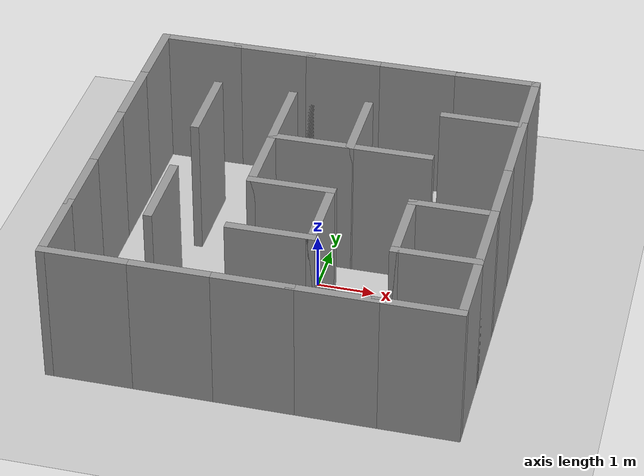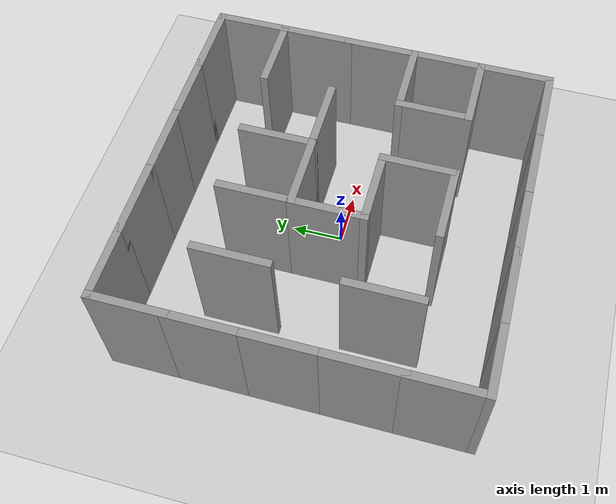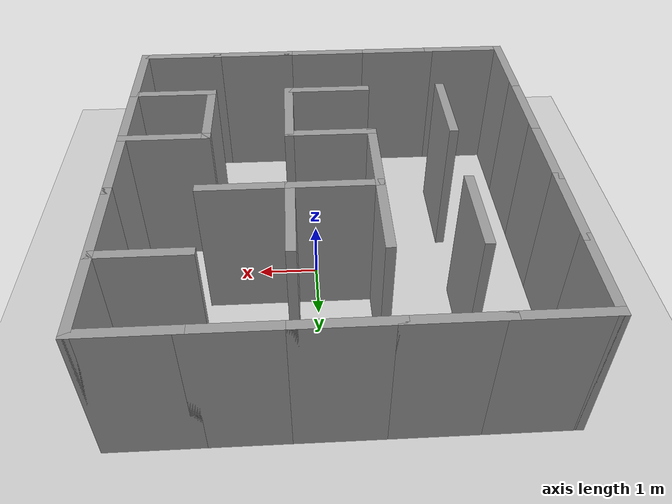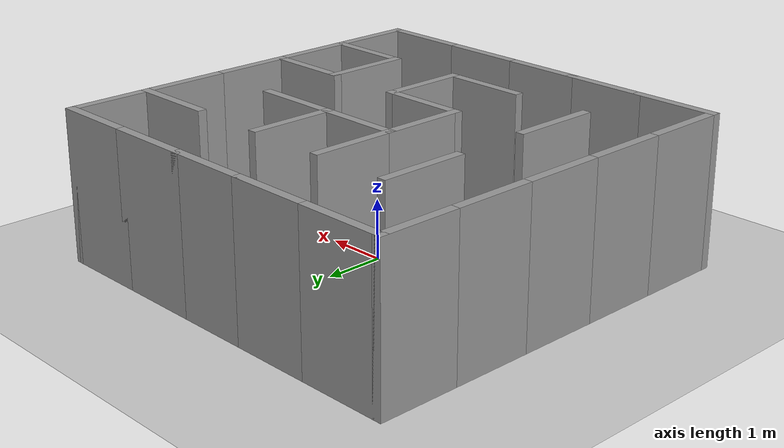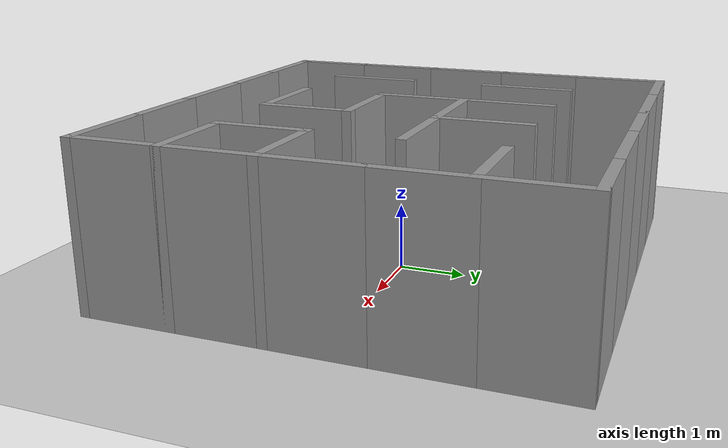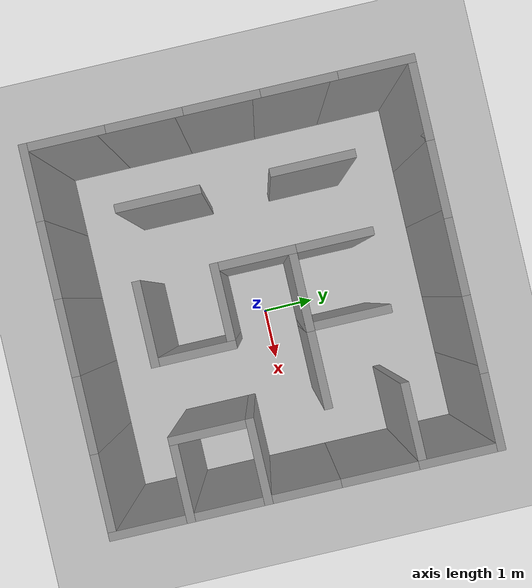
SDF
<sdf version="1.7">
 <world name="default">
  <model name="ground_plane">
   <static>1</static>
   <link name="link">
    <collision name="collision">
     <geometry><plane><normal>0 0 1</normal><size>100 100</size></plane></geometry>
     <surface><friction><ode><mu>100</mu><mu2>50</mu2></ode></friction></surface>
    </collision>
    <visual name="visual">
     <cast_shadows>0</cast_shadows>
     <geometry><plane><normal>0 0 1</normal><size>100 100</size></plane></geometry>
     <material>
      <script><uri>file://media/materials/scripts/gazebo.material</uri><name>Gazebo/Grey</name></script>
     </material>
    </visual>
   </link>
  </model>
  <light name="sun" type="directional">
   <pose>0 0 10 0 -0 0</pose>
   <diffuse>0.8 0.8 0.8 1</diffuse>
   <specular>0.2 0.2 0.2 1</specular>
   <attenuation>
    <range>1000</range>
    <constant>0.9</constant>
    <linear>0.01</linear>
    <quadratic>0.001</quadratic>
   </attenuation>
   <direction>-0.5 0.1 -0.9</direction>
   <spot><inner_angle>0</inner_angle><outer_angle>0</outer_angle><falloff>0</falloff></spot>
  </light>
  <scene><shadows>0</shadows><ambient>0.4 0.4 0.4 1</ambient><background>0.7 0.7 0.7 1</background></scene>
  <physics type="ode">
   <real_time_update_rate>1000</real_time_update_rate>
   <max_step_size>0.001</max_step_size>
   <real_time_factor>1</real_time_factor>
   <ode>
    <solver>
     <type>quick</type>
     <iters>150</iters>
     <precon_iters>0</precon_iters>
     <sor>1.4</sor>
     <use_dynamic_moi_rescaling>1</use_dynamic_moi_rescaling>
    </solver>
    <constraints>
     <cfm>1e-05</cfm>
     <erp>0.2</erp>
     <contact_max_correcting_vel>2000</contact_max_correcting_vel>
     <contact_surface_layer>0.01</contact_surface_layer>
    </constraints>
   </ode>
  </physics>
  <gravity>0 0 -9.8</gravity>
  <magnetic_field>6e-06 2.3e-05 -4.2e-05</magnetic_field>
  <atmosphere type="adiabatic"/>
  <audio><device>default</device></audio>
  <spherical_coordinates>
   <surface_model>EARTH_WGS84</surface_model>
   <latitude_deg>0</latitude_deg>
   <longitude_deg>0</longitude_deg>
   <elevation>0</elevation>
   <heading_deg>0</heading_deg>
  </spherical_coordinates>
  <model name="test_maze_v3">
   <pose>-0.289993 -0.005267 0 0 -0 0</pose>
   <link name="Wall_0">
    <collision name="Wall_0_Collision">
     <geometry><box><size>1.5 0.15 2.5</size></box></geometry>
     <pose>0 0 1.25 0 -0 0</pose>
    </collision>
    <visual name="Wall_0_Visual">
     <pose>0 0 1.25 0 -0 0</pose>
     <geometry><box><size>1.5 0.15 2.5</size></box></geometry>
     <material>
      <script><uri>file://media/materials/scripts/gazebo.material</uri><name>Gazebo/Grey</name></script>
      <ambient>1 1 1 1</ambient>
     </material>
     <meta><layer>0</layer></meta>
    </visual>
    <pose>-0 -2.025 0 0 -0 0</pose>
   </link>
   <link name="Wall_1">
    <collision name="Wall_1_Collision">
     <geometry><box><size>1.5 0.15 2.5</size></box></geometry>
     <pose>0 0 1.25 0 -0 0</pose>
    </collision>
    <visual name="Wall_1_Visual">
     <pose>0 0 1.25 0 -0 0</pose>
     <geometry><box><size>1.5 0.15 2.5</size></box></geometry>
     <material>
      <script><uri>file://media/materials/scripts/gazebo.material</uri><name>Gazebo/Grey</name></script>
      <ambient>1 1 1 1</ambient>
     </material>
     <meta><layer>0</layer></meta>
    </visual>
    <pose>0.675 -1.35 0 0 -0 1.5708</pose>
   </link>
   <link name="Wall_12">
    <collision name="Wall_12_Collision">
     <geometry><box><size>1.5 0.15 2.5</size></box></geometry>
     <pose>0 0 1.25 0 -0 0</pose>
    </collision>
    <visual name="Wall_12_Visual">
     <pose>0 0 1.25 0 -0 0</pose>
     <geometry><box><size>1.5 0.15 2.5</size></box></geometry>
     <material>
      <script><uri>file://media/materials/scripts/gazebo.material</uri><name>Gazebo/Grey</name></script>
      <ambient>1 1 1 1</ambient>
     </material>
     <meta><layer>0</layer></meta>
    </visual>
    <pose>2.7 -0.675 0 0 -0 3.14159</pose>
   </link>
   <link name="Wall_13">
    <collision name="Wall_13_Collision">
     <geometry><box><size>1.5 0.15 2.5</size></box></geometry>
     <pose>0 0 1.25 0 -0 0</pose>
    </collision>
    <visual name="Wall_13_Visual">
     <pose>0 0 1.25 0 -0 0</pose>
     <geometry><box><size>1.5 0.15 2.5</size></box></geometry>
     <material>
      <script><uri>file://media/materials/scripts/gazebo.material</uri><name>Gazebo/Grey</name></script>
      <ambient>1 1 1 1</ambient>
     </material>
     <meta><layer>0</layer></meta>
    </visual>
    <pose>2.025 -1.35 0 0 -0 -1.5708</pose>
   </link>
   <link name="Wall_14">
    <collision name="Wall_14_Collision">
     <geometry><box><size>1.5 0.15 2.5</size></box></geometry>
     <pose>0 0 1.25 0 -0 0</pose>
    </collision>
    <visual name="Wall_14_Visual">
     <pose>0 0 1.25 0 -0 0</pose>
     <geometry><box><size>1.5 0.15 2.5</size></box></geometry>
     <material>
      <script><uri>file://media/materials/scripts/gazebo.material</uri><name>Gazebo/Grey</name></script>
      <ambient>1 1 1 1</ambient>
     </material>
     <meta><layer>0</layer></meta>
    </visual>
    <pose>2.7 -2.025 0 0 -0 0</pose>
   </link>
   <link name="Wall_15">
    <collision name="Wall_15_Collision">
     <geometry><box><size>1.5 0.15 2.5</size></box></geometry>
     <pose>0 0 1.25 0 -0 0</pose>
    </collision>
    <visual name="Wall_15_Visual">
     <pose>0 0 1.25 0 -0 0</pose>
     <geometry><box><size>1.5 0.15 2.5</size></box></geometry>
     <material>
      <script><uri>file://media/materials/scripts/gazebo.material</uri><name>Gazebo/Grey</name></script>
      <ambient>1 1 1 1</ambient>
     </material>
     <meta><layer>0</layer></meta>
    </visual>
    <pose>3.375 -1.35 0 0 -0 1.5708</pose>
   </link>
   <link name="Wall_17">
    <collision name="Wall_17_Collision">
     <geometry><box><size>1.5 0.15 2.5</size></box></geometry>
     <pose>0 0 1.25 0 -0 0</pose>
    </collision>
    <visual name="Wall_17_Visual">
     <pose>0 0 1.25 0 -0 0</pose>
     <geometry><box><size>1.5 0.15 2.5</size></box></geometry>
     <material>
      <script><uri>file://media/materials/scripts/gazebo.material</uri><name>Gazebo/Grey</name></script>
      <ambient>1 1 1 1</ambient>
     </material>
     <meta><layer>0</layer></meta>
    </visual>
    <pose>3.375 -2.7 0 0 -0 -1.5708</pose>
   </link>
   <link name="Wall_18">
    <collision name="Wall_18_Collision">
     <geometry><box><size>1.5 0.15 2.5</size></box></geometry>
     <pose>0 0 1.25 0 -0 0</pose>
    </collision>
    <visual name="Wall_18_Visual">
     <pose>0 0 1.25 0 -0 0</pose>
     <geometry><box><size>1.5 0.15 2.5</size></box></geometry>
     <material>
      <script><uri>file://media/materials/scripts/gazebo.material</uri><name>Gazebo/Grey</name></script>
      <ambient>1 1 1 1</ambient>
     </material>
     <meta><layer>0</layer></meta>
    </visual>
    <pose>2.7 -3.375 0 0 -0 3.14159</pose>
   </link>
   <link name="Wall_19">
    <collision name="Wall_19_Collision">
     <geometry><box><size>1.5 0.15 2.5</size></box></geometry>
     <pose>0 0 1.25 0 -0 0</pose>
    </collision>
    <visual name="Wall_19_Visual">
     <pose>0 0 1.25 0 -0 0</pose>
     <geometry><box><size>1.5 0.15 2.5</size></box></geometry>
     <material>
      <script><uri>file://media/materials/scripts/gazebo.material</uri><name>Gazebo/Grey</name></script>
      <ambient>1 1 1 1</ambient>
     </material>
     <meta><layer>0</layer></meta>
    </visual>
    <pose>1.35 -3.375 0 0 -0 3.14159</pose>
   </link>
   <link name="Wall_2">
    <collision name="Wall_2_Collision">
     <geometry><box><size>1.5 0.15 2.5</size></box></geometry>
     <pose>0 0 1.25 0 -0 0</pose>
    </collision>
    <visual name="Wall_2_Visual">
     <pose>0 0 1.25 0 -0 0</pose>
     <geometry><box><size>1.5 0.15 2.5</size></box></geometry>
     <material>
      <script><uri>file://media/materials/scripts/gazebo.material</uri><name>Gazebo/Grey</name></script>
      <ambient>1 1 1 1</ambient>
     </material>
     <meta><layer>0</layer></meta>
    </visual>
    <pose>-0 -0.675 0 0 -0 3.14159</pose>
   </link>
   <link name="Wall_20">
    <collision name="Wall_20_Collision">
     <geometry><box><size>1.5 0.15 2.5</size></box></geometry>
     <pose>0 0 1.25 0 -0 0</pose>
    </collision>
    <visual name="Wall_20_Visual">
     <pose>0 0 1.25 0 -0 0</pose>
     <geometry><box><size>1.5 0.15 2.5</size></box></geometry>
     <material>
      <script><uri>file://media/materials/scripts/gazebo.material</uri><name>Gazebo/Grey</name></script>
      <ambient>1 1 1 1</ambient>
     </material>
     <meta><layer>0</layer></meta>
    </visual>
    <pose>-0 -3.375 0 0 -0 3.14159</pose>
   </link>
   <link name="Wall_21">
    <collision name="Wall_21_Collision">
     <geometry><box><size>1.5 0.15 2.5</size></box></geometry>
     <pose>0 0 1.25 0 -0 0</pose>
    </collision>
    <visual name="Wall_21_Visual">
     <pose>0 0 1.25 0 -0 0</pose>
     <geometry><box><size>1.5 0.15 2.5</size></box></geometry>
     <material>
      <script><uri>file://media/materials/scripts/gazebo.material</uri><name>Gazebo/Grey</name></script>
      <ambient>1 1 1 1</ambient>
     </material>
     <meta><layer>0</layer></meta>
    </visual>
    <pose>-1.35 -3.375 0 0 -0 3.14159</pose>
   </link>
   <link name="Wall_22">
    <collision name="Wall_22_Collision">
     <geometry><box><size>1.5 0.15 2.5</size></box></geometry>
     <pose>0 0 1.25 0 -0 0</pose>
    </collision>
    <visual name="Wall_22_Visual">
     <pose>0 0 1.25 0 -0 0</pose>
     <geometry><box><size>1.5 0.15 2.5</size></box></geometry>
     <material>
      <script><uri>file://media/materials/scripts/gazebo.material</uri><name>Gazebo/Grey</name></script>
      <ambient>1 1 1 1</ambient>
     </material>
     <meta><layer>0</layer></meta>
    </visual>
    <pose>-2.7 -3.375 0 0 -0 3.14159</pose>
   </link>
   <link name="Wall_23">
    <collision name="Wall_23_Collision">
     <geometry><box><size>1.5 0.15 2.5</size></box></geometry>
     <pose>0 0 1.25 0 -0 0</pose>
    </collision>
    <visual name="Wall_23_Visual">
     <pose>0 0 1.25 0 -0 0</pose>
     <geometry><box><size>1.5 0.15 2.5</size></box></geometry>
     <material>
      <script><uri>file://media/materials/scripts/gazebo.material</uri><name>Gazebo/Grey</name></script>
      <ambient>1 1 1 1</ambient>
     </material>
     <meta><layer>0</layer></meta>
    </visual>
    <pose>-3.375 -2.7 0 0 -0 1.5708</pose>
   </link>
   <link name="Wall_24">
    <collision name="Wall_24_Collision">
     <geometry><box><size>1.5 0.15 2.5</size></box></geometry>
     <pose>0 0 1.25 0 -0 0</pose>
    </collision>
    <visual name="Wall_24_Visual">
     <pose>0 0 1.25 0 -0 0</pose>
     <geometry><box><size>1.5 0.15 2.5</size></box></geometry>
     <material>
      <script><uri>file://media/materials/scripts/gazebo.material</uri><name>Gazebo/Grey</name></script>
      <ambient>1 1 1 1</ambient>
     </material>
     <meta><layer>0</layer></meta>
    </visual>
    <pose>-3.375 -1.35 0 0 -0 1.5708</pose>
   </link>
   <link name="Wall_27">
    <collision name="Wall_27_Collision">
     <geometry><box><size>1.5 0.15 2.5</size></box></geometry>
     <pose>0 0 1.25 0 -0 0</pose>
    </collision>
    <visual name="Wall_27_Visual">
     <pose>0 0 1.25 0 -0 0</pose>
     <geometry><box><size>1.5 0.15 2.5</size></box></geometry>
     <material>
      <script><uri>file://media/materials/scripts/gazebo.material</uri><name>Gazebo/Grey</name></script>
      <ambient>1 1 1 1</ambient>
     </material>
     <meta><layer>0</layer></meta>
    </visual>
    <pose>-2.025 -1.35 0 0 -0 -1.5708</pose>
   </link>
   <link name="Wall_29">
    <collision name="Wall_29_Collision">
     <geometry><box><size>1.5 0.15 2.5</size></box></geometry>
     <pose>0 0 1.25 0 -0 0</pose>
    </collision>
    <visual name="Wall_29_Visual">
     <pose>0 0 1.25 0 -0 0</pose>
     <geometry><box><size>1.5 0.15 2.5</size></box></geometry>
     <material>
      <script><uri>file://media/materials/scripts/gazebo.material</uri><name>Gazebo/Grey</name></script>
      <ambient>1 1 1 1</ambient>
     </material>
     <meta><layer>0</layer></meta>
    </visual>
    <pose>-3.375 0 0 0 -0 1.5708</pose>
   </link>
   <link name="Wall_3">
    <collision name="Wall_3_Collision">
     <geometry><box><size>1.5 0.15 2.5</size></box></geometry>
     <pose>0 0 1.25 0 -0 0</pose>
    </collision>
    <visual name="Wall_3_Visual">
     <pose>0 0 1.25 0 -0 0</pose>
     <geometry><box><size>1.5 0.15 2.5</size></box></geometry>
     <material>
      <script><uri>file://media/materials/scripts/gazebo.material</uri><name>Gazebo/Grey</name></script>
      <ambient>1 1 1 1</ambient>
     </material>
     <meta><layer>0</layer></meta>
    </visual>
    <pose>-0.675 0 0 0 -0 1.5708</pose>
   </link>
   <link name="Wall_30">
    <collision name="Wall_30_Collision">
     <geometry><box><size>1.5 0.15 2.5</size></box></geometry>
     <pose>0 0 1.25 0 -0 0</pose>
    </collision>
    <visual name="Wall_30_Visual">
     <pose>0 0 1.25 0 -0 0</pose>
     <geometry><box><size>1.5 0.15 2.5</size></box></geometry>
     <material>
      <script><uri>file://media/materials/scripts/gazebo.material</uri><name>Gazebo/Grey</name></script>
      <ambient>1 1 1 1</ambient>
     </material>
     <meta><layer>0</layer></meta>
    </visual>
    <pose>-3.375 1.35 0 0 -0 1.5708</pose>
   </link>
   <link name="Wall_33">
    <collision name="Wall_33_Collision">
     <geometry><box><size>1.5 0.15 2.5</size></box></geometry>
     <pose>0 0 1.25 0 -0 0</pose>
    </collision>
    <visual name="Wall_33_Visual">
     <pose>0 0 1.25 0 -0 0</pose>
     <geometry><box><size>1.5 0.15 2.5</size></box></geometry>
     <material>
      <script><uri>file://media/materials/scripts/gazebo.material</uri><name>Gazebo/Grey</name></script>
      <ambient>1 1 1 1</ambient>
     </material>
     <meta><layer>0</layer></meta>
    </visual>
    <pose>-2.025 1.35 0 0 -0 -1.5708</pose>
   </link>
   <link name="Wall_35">
    <collision name="Wall_35_Collision">
     <geometry><box><size>1.5 0.15 2.5</size></box></geometry>
     <pose>0 0 1.25 0 -0 0</pose>
    </collision>
    <visual name="Wall_35_Visual">
     <pose>0 0 1.25 0 -0 0</pose>
     <geometry><box><size>1.5 0.15 2.5</size></box></geometry>
     <material>
      <script><uri>file://media/materials/scripts/gazebo.material</uri><name>Gazebo/Grey</name></script>
      <ambient>1 1 1 1</ambient>
     </material>
     <meta><layer>0</layer></meta>
    </visual>
    <pose>-3.375 2.7 0 0 -0 1.5708</pose>
   </link>
   <link name="Wall_36">
    <collision name="Wall_36_Collision">
     <geometry><box><size>1.5 0.15 2.5</size></box></geometry>
     <pose>0 0 1.25 0 -0 0</pose>
    </collision>
    <visual name="Wall_36_Visual">
     <pose>0 0 1.25 0 -0 0</pose>
     <geometry><box><size>1.5 0.15 2.5</size></box></geometry>
     <material>
      <script><uri>file://media/materials/scripts/gazebo.material</uri><name>Gazebo/Grey</name></script>
      <ambient>1 1 1 1</ambient>
     </material>
     <meta><layer>0</layer></meta>
    </visual>
    <pose>-2.7 3.375 0 0 -0 0</pose>
   </link>
   <link name="Wall_38">
    <collision name="Wall_38_Collision">
     <geometry><box><size>1.5 0.15 2.5</size></box></geometry>
     <pose>0 0 1.25 0 -0 0</pose>
    </collision>
    <visual name="Wall_38_Visual">
     <pose>0 0 1.25 0 -0 0</pose>
     <geometry><box><size>1.5 0.15 2.5</size></box></geometry>
     <material>
      <script><uri>file://media/materials/scripts/gazebo.material</uri><name>Gazebo/Grey</name></script>
      <ambient>1 1 1 1</ambient>
     </material>
     <meta><layer>0</layer></meta>
    </visual>
    <pose>-1.35 3.375 0 0 -0 0</pose>
   </link>
   <link name="Wall_39">
    <collision name="Wall_39_Collision">
     <geometry><box><size>1.5 0.15 2.5</size></box></geometry>
     <pose>0 0 1.25 0 -0 0</pose>
    </collision>
    <visual name="Wall_39_Visual">
     <pose>0 0 1.25 0 -0 0</pose>
     <geometry><box><size>1.5 0.15 2.5</size></box></geometry>
     <material>
      <script><uri>file://media/materials/scripts/gazebo.material</uri><name>Gazebo/Grey</name></script>
      <ambient>1 1 1 1</ambient>
     </material>
     <meta><layer>0</layer></meta>
    </visual>
    <pose>-0 3.375 0 0 -0 0</pose>
   </link>
   <link name="Wall_4">
    <collision name="Wall_4_Collision">
     <geometry><box><size>1.5 0.15 2.5</size></box></geometry>
     <pose>0 0 1.25 0 -0 0</pose>
    </collision>
    <visual name="Wall_4_Visual">
     <pose>0 0 1.25 0 -0 0</pose>
     <geometry><box><size>1.5 0.15 2.5</size></box></geometry>
     <material>
      <script><uri>file://media/materials/scripts/gazebo.material</uri><name>Gazebo/Grey</name></script>
      <ambient>1 1 1 1</ambient>
     </material>
     <meta><layer>0</layer></meta>
    </visual>
    <pose>-0 0.675 0 0 -0 0</pose>
   </link>
   <link name="Wall_40">
    <collision name="Wall_40_Collision">
     <geometry><box><size>1.5 0.15 2.5</size></box></geometry>
     <pose>0 0 1.25 0 -0 0</pose>
    </collision>
    <visual name="Wall_40_Visual">
     <pose>0 0 1.25 0 -0 0</pose>
     <geometry><box><size>1.5 0.15 2.5</size></box></geometry>
     <material>
      <script><uri>file://media/materials/scripts/gazebo.material</uri><name>Gazebo/Grey</name></script>
      <ambient>1 1 1 1</ambient>
     </material>
     <meta><layer>0</layer></meta>
    </visual>
    <pose>1.35 3.375 0 0 -0 0</pose>
   </link>
   <link name="Wall_41">
    <collision name="Wall_41_Collision">
     <geometry><box><size>1.5 0.15 2.5</size></box></geometry>
     <pose>0 0 1.25 0 -0 0</pose>
    </collision>
    <visual name="Wall_41_Visual">
     <pose>0 0 1.25 0 -0 0</pose>
     <geometry><box><size>1.5 0.15 2.5</size></box></geometry>
     <material>
      <script><uri>file://media/materials/scripts/gazebo.material</uri><name>Gazebo/Grey</name></script>
      <ambient>1 1 1 1</ambient>
     </material>
     <meta><layer>0</layer></meta>
    </visual>
    <pose>2.7 3.375 0 0 -0 0</pose>
   </link>
   <link name="Wall_42">
    <collision name="Wall_42_Collision">
     <geometry><box><size>1.5 0.15 2.5</size></box></geometry>
     <pose>0 0 1.25 0 -0 0</pose>
    </collision>
    <visual name="Wall_42_Visual">
     <pose>0 0 1.25 0 -0 0</pose>
     <geometry><box><size>1.5 0.15 2.5</size></box></geometry>
     <material>
      <script><uri>file://media/materials/scripts/gazebo.material</uri><name>Gazebo/Grey</name></script>
      <ambient>1 1 1 1</ambient>
     </material>
     <meta><layer>0</layer></meta>
    </visual>
    <pose>3.375 2.7 0 0 -0 -1.5708</pose>
   </link>
   <link name="Wall_43">
    <collision name="Wall_43_Collision">
     <geometry><box><size>1.5 0.15 2.5</size></box></geometry>
     <pose>0 0 1.25 0 -0 0</pose>
    </collision>
    <visual name="Wall_43_Visual">
     <pose>0 0 1.25 0 -0 0</pose>
     <geometry><box><size>1.5 0.15 2.5</size></box></geometry>
     <material>
      <script><uri>file://media/materials/scripts/gazebo.material</uri><name>Gazebo/Grey</name></script>
      <ambient>1 1 1 1</ambient>
     </material>
     <meta><layer>0</layer></meta>
    </visual>
    <pose>3.375 1.35 0 0 -0 -1.5708</pose>
   </link>
   <link name="Wall_45">
    <collision name="Wall_45_Collision">
     <geometry><box><size>1.5 0.15 2.5</size></box></geometry>
     <pose>0 0 1.25 0 -0 0</pose>
    </collision>
    <visual name="Wall_45_Visual">
     <pose>0 0 1.25 0 -0 0</pose>
     <geometry><box><size>1.5 0.15 2.5</size></box></geometry>
     <material>
      <script><uri>file://media/materials/scripts/gazebo.material</uri><name>Gazebo/Grey</name></script>
      <ambient>1 1 1 1</ambient>
     </material>
     <meta><layer>0</layer></meta>
    </visual>
    <pose>-0.675 1.35 0 0 -0 1.5708</pose>
   </link>
   <link name="Wall_47">
    <collision name="Wall_47_Collision">
     <geometry><box><size>1.5 0.15 2.5</size></box></geometry>
     <pose>0 0 1.25 0 -0 0</pose>
    </collision>
    <visual name="Wall_47_Visual">
     <pose>0 0 1.25 0 -0 0</pose>
     <geometry><box><size>1.5 0.15 2.5</size></box></geometry>
     <material>
      <script><uri>file://media/materials/scripts/gazebo.material</uri><name>Gazebo/Grey</name></script>
      <ambient>1 1 1 1</ambient>
     </material>
     <meta><layer>0</layer></meta>
    </visual>
    <pose>0.675 1.35 0 0 -0 -1.5708</pose>
   </link>
   <link name="Wall_5">
    <collision name="Wall_5_Collision">
     <geometry><box><size>1.5 0.15 2.5</size></box></geometry>
     <pose>0 0 1.25 0 -0 0</pose>
    </collision>
    <visual name="Wall_5_Visual">
     <pose>0 0 1.25 0 -0 0</pose>
     <geometry><box><size>1.5 0.15 2.5</size></box></geometry>
     <material>
      <script><uri>file://media/materials/scripts/gazebo.material</uri><name>Gazebo/Grey</name></script>
      <ambient>1 1 1 1</ambient>
     </material>
     <meta><layer>0</layer></meta>
    </visual>
    <pose>1.35 0.675 0 0 -0 0</pose>
   </link>
   <link name="Wall_50">
    <collision name="Wall_50_Collision">
     <geometry><box><size>1.5 0.15 2.5</size></box></geometry>
     <pose>0 0 1.25 0 -0 0</pose>
    </collision>
    <visual name="Wall_50_Visual">
     <pose>0 0 1.25 0 -0 0</pose>
     <geometry><box><size>1.5 0.15 2.5</size></box></geometry>
     <material>
      <script><uri>file://media/materials/scripts/gazebo.material</uri><name>Gazebo/Grey</name></script>
      <ambient>1 1 1 1</ambient>
     </material>
     <meta><layer>0</layer></meta>
    </visual>
    <pose>2.7 2.025 0 0 -0 0</pose>
   </link>
   <link name="Wall_7">
    <collision name="Wall_7_Collision">
     <geometry><box><size>1.5 0.15 2.5</size></box></geometry>
     <pose>0 0 1.25 0 -0 0</pose>
    </collision>
    <visual name="Wall_7_Visual">
     <pose>0 0 1.25 0 -0 0</pose>
     <geometry><box><size>1.5 0.15 2.5</size></box></geometry>
     <material>
      <script><uri>file://media/materials/scripts/gazebo.material</uri><name>Gazebo/Grey</name></script>
      <ambient>1 1 1 1</ambient>
     </material>
     <meta><layer>0</layer></meta>
    </visual>
    <pose>3.375 0 0 0 -0 -1.5708</pose>
   </link>
   <static>1</static>
  </model>
 </world>
</sdf>
